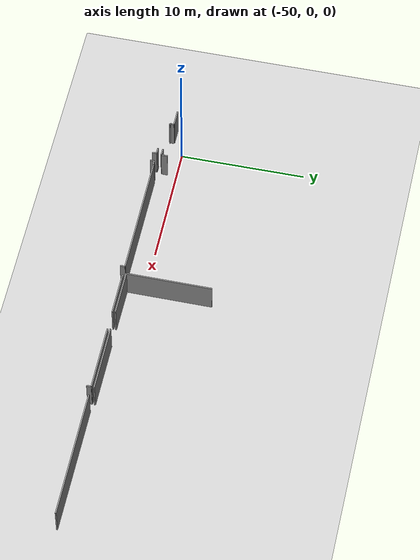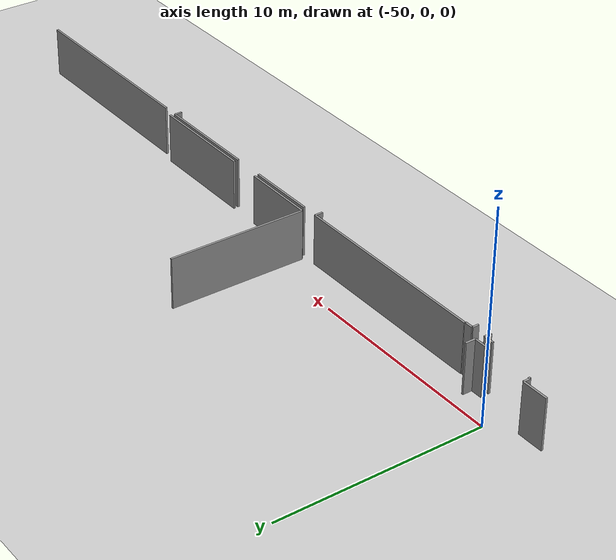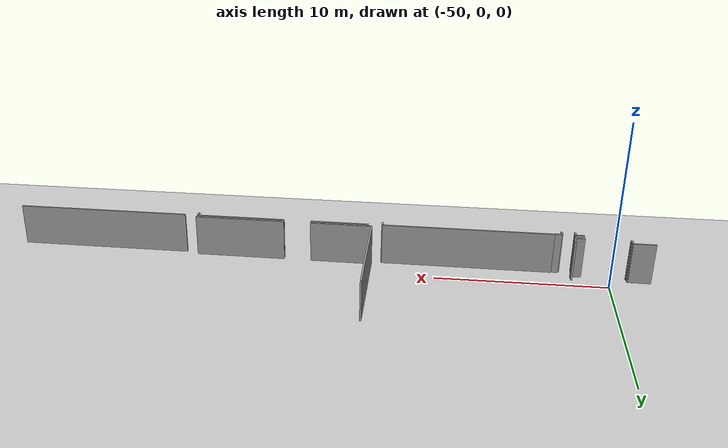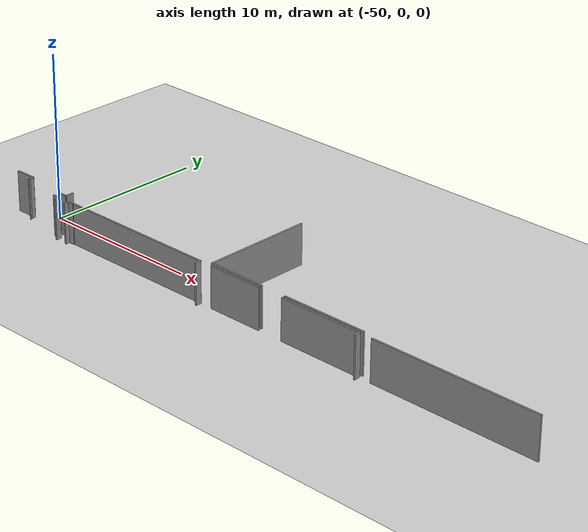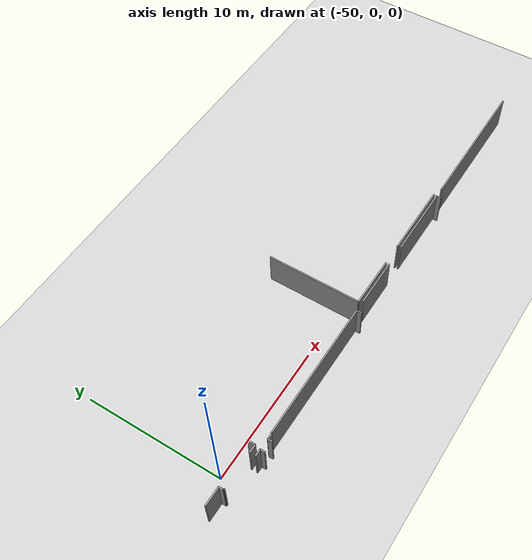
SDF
<sdf version="1.6">
 <world name="default">
  <model name="ground_plane">
   <static>1</static>
   <link name="link">
    <collision name="collision">
     <geometry><plane><normal>0 0 1</normal><size>100 100</size></plane></geometry>
     <surface><friction><ode><mu>100</mu><mu2>50</mu2></ode></friction></surface>
    </collision>
    <visual name="visual">
     <cast_shadows>0</cast_shadows>
     <geometry><plane><normal>0 0 1</normal><size>100 100</size></plane></geometry>
     <material>
      <script><uri>file://media/materials/scripts/gazebo.material</uri><name>Gazebo/Grey</name></script>
     </material>
    </visual>
   </link>
  </model>
  <model name="50015847">
   <static>1</static>
   <link name="Wall_294">
    <collision name="Wall_294_Collision">
     <geometry><box><size>0.502618599685 0.1 2.5</size></box></geometry>
     <pose>0.251309299842 0 1.25 0 0 0</pose>
    </collision>
    <visual name="Wall_294_Visual">
     <pose>0.251309299842 0 1.25 0 0 0</pose>
     <geometry><box><size>0.502618599685 0.1 2.5</size></box></geometry>
     <material>
      <script><uri>file://media/materials/scripts/gazebo.material</uri><name>Gazebo/Grey</name></script>
      <ambient>1 1 1 1</ambient>
     </material>
    </visual>
    <pose>84.4122133523 -44.6494127218 0 0 0 -1.57079632679</pose>
   </link>
   <link name="Wall_295">
    <collision name="Wall_295_Collision">
     <geometry><box><size>0.590583210454 0.1 2.5</size></box></geometry>
     <pose>0.295291605227 0 1.25 0 0 0</pose>
    </collision>
    <visual name="Wall_295_Visual">
     <pose>0.295291605227 0 1.25 0 0 0</pose>
     <geometry><box><size>0.590583210454 0.1 2.5</size></box></geometry>
     <material>
      <script><uri>file://media/materials/scripts/gazebo.material</uri><name>Gazebo/Grey</name></script>
      <ambient>1 1 1 1</ambient>
     </material>
    </visual>
    <pose>84.4122133523 -45.1520313215 0 0 0 3.14159265359</pose>
   </link>
   <link name="Wall_296">
    <collision name="Wall_296_Collision">
     <geometry><box><size>0.0950831341842 0.1 2.5</size></box></geometry>
     <pose>0.0475415670921 0 1.25 0 0 0</pose>
    </collision>
    <visual name="Wall_296_Visual">
     <pose>0.0475415670921 0 1.25 0 0 0</pose>
     <geometry><box><size>0.0950831341842 0.1 2.5</size></box></geometry>
     <material>
      <script><uri>file://media/materials/scripts/gazebo.material</uri><name>Gazebo/Grey</name></script>
      <ambient>1 1 1 1</ambient>
     </material>
    </visual>
    <pose>81.2879442721 -45.1520313215 0 0 0 3.14159265359</pose>
   </link>
   <link name="Wall_297">
    <collision name="Wall_297_Collision">
     <geometry><box><size>0.328977474958 0.1 2.5</size></box></geometry>
     <pose>0.164488737479 0 1.25 0 0 0</pose>
    </collision>
    <visual name="Wall_297_Visual">
     <pose>0.164488737479 0 1.25 0 0 0</pose>
     <geometry><box><size>0.328977474958 0.1 2.5</size></box></geometry>
     <material>
      <script><uri>file://media/materials/scripts/gazebo.material</uri><name>Gazebo/Grey</name></script>
      <ambient>1 1 1 1</ambient>
     </material>
    </visual>
    <pose>81.1928611379 -45.1520313215 0 0 0 1.57079632679</pose>
   </link>
   <link name="Wall_298">
    <collision name="Wall_298_Collision">
     <geometry><box><size>1.30980830833 0.1 2.5</size></box></geometry>
     <pose>0.654904154167 0 1.25 0 0 0</pose>
    </collision>
    <visual name="Wall_298_Visual">
     <pose>0.654904154167 0 1.25 0 0 0</pose>
     <geometry><box><size>1.30980830833 0.1 2.5</size></box></geometry>
     <material>
      <script><uri>file://media/materials/scripts/gazebo.material</uri><name>Gazebo/Grey</name></script>
      <ambient>1 1 1 1</ambient>
     </material>
    </visual>
    <pose>81.1928611379 -44.8230538465 0 0 0 3.14159265359</pose>
   </link>
   <link name="Wall_319">
    <collision name="Wall_319_Collision">
     <geometry><box><size>6.78090201861 0.1 2.5</size></box></geometry>
     <pose>3.3904510093 0 1.25 0 0 0</pose>
    </collision>
    <visual name="Wall_319_Visual">
     <pose>3.3904510093 0 1.25 0 0 0</pose>
     <geometry><box><size>6.78090201861 0.1 2.5</size></box></geometry>
     <material>
      <script><uri>file://media/materials/scripts/gazebo.material</uri><name>Gazebo/Grey</name></script>
      <ambient>1 1 1 1</ambient>
     </material>
    </visual>
    <pose>96.1956577007 -45.2949102558 0 0 0 1.57079632679</pose>
   </link>
   <link name="Wall_322">
    <collision name="Wall_322_Collision">
     <geometry><box><size>5.39634921442 0.1 2.5</size></box></geometry>
     <pose>2.69817460721 0 1.25 0 0 0</pose>
    </collision>
    <visual name="Wall_322_Visual">
     <pose>2.69817460721 0 1.25 0 0 0</pose>
     <geometry><box><size>5.39634921442 0.1 2.5</size></box></geometry>
     <material>
      <script><uri>file://media/materials/scripts/gazebo.material</uri><name>Gazebo/Grey</name></script>
      <ambient>1 1 1 1</ambient>
     </material>
    </visual>
    <pose>106.848782224 -45.3127065643 0 0 0 3.14159265359</pose>
   </link>
   <link name="Wall_323">
    <collision name="Wall_323_Collision">
     <geometry><box><size>3.658455854 0.1 2.5</size></box></geometry>
     <pose>1.829227927 0 1.25 0 0 0</pose>
    </collision>
    <visual name="Wall_323_Visual">
     <pose>1.829227927 0 1.25 0 0 0</pose>
     <geometry><box><size>3.658455854 0.1 2.5</size></box></geometry>
     <material>
      <script><uri>file://media/materials/scripts/gazebo.material</uri><name>Gazebo/Grey</name></script>
      <ambient>1 1 1 1</ambient>
     </material>
    </visual>
    <pose>99.85407027 -45.3127065643 0 0 0 3.13672820273</pose>
   </link>
   <link name="Wall_1107">
    <collision name="Wall_1107_Collision">
     <geometry><box><size>0.498550872019 0.1 2.5</size></box></geometry>
     <pose>0.24927543601 0 1.25 0 0 0</pose>
    </collision>
    <visual name="Wall_1107_Visual">
     <pose>0.24927543601 0 1.25 0 0 0</pose>
     <geometry><box><size>0.498550872019 0.1 2.5</size></box></geometry>
     <material>
      <script><uri>file://media/materials/scripts/gazebo.material</uri><name>Gazebo/Grey</name></script>
      <ambient>1 1 1 1</ambient>
     </material>
    </visual>
    <pose>83.8279859663 -45.5572786902 0 0 0 0.0</pose>
   </link>
   <link name="Wall_1108">
    <collision name="Wall_1108_Collision">
     <geometry><box><size>0.341943356892 0.1 2.5</size></box></geometry>
     <pose>0.170971678446 0 1.25 0 0 0</pose>
    </collision>
    <visual name="Wall_1108_Visual">
     <pose>0.170971678446 0 1.25 0 0 0</pose>
     <geometry><box><size>0.341943356892 0.1 2.5</size></box></geometry>
     <material>
      <script><uri>file://media/materials/scripts/gazebo.material</uri><name>Gazebo/Grey</name></script>
      <ambient>1 1 1 1</ambient>
     </material>
    </visual>
    <pose>84.3265368384 -45.5572786902 0 0 0 -1.57079632679</pose>
   </link>
   <link name="Wall_1110">
    <collision name="Wall_1110_Collision">
     <geometry><box><size>0.324147048355 0.1 2.5</size></box></geometry>
     <pose>0.162073524178 0 1.25 0 0 0</pose>
    </collision>
    <visual name="Wall_1110_Visual">
     <pose>0.162073524178 0 1.25 0 0 0</pose>
     <geometry><box><size>0.324147048355 0.1 2.5</size></box></geometry>
     <material>
      <script><uri>file://media/materials/scripts/gazebo.material</uri><name>Gazebo/Grey</name></script>
      <ambient>1 1 1 1</ambient>
     </material>
    </visual>
    <pose>85.0996593278 -45.8992220471 0 0 0 1.57079632679</pose>
   </link>
   <link name="Wall_1111">
    <collision name="Wall_1111_Collision">
     <geometry><box><size>0.415416687853 0.1 2.5</size></box></geometry>
     <pose>0.207708343926 0 1.25 0 0 0</pose>
    </collision>
    <visual name="Wall_1111_Visual">
     <pose>0.207708343926 0 1.25 0 0 0</pose>
     <geometry><box><size>0.415416687853 0.1 2.5</size></box></geometry>
     <material>
      <script><uri>file://media/materials/scripts/gazebo.material</uri><name>Gazebo/Grey</name></script>
      <ambient>1 1 1 1</ambient>
     </material>
    </visual>
    <pose>85.0996593278 -45.5750749987 0 0 0 0.0</pose>
   </link>
   <link name="Wall_1112">
    <collision name="Wall_1112_Collision">
     <geometry><box><size>0.0371180149489 0.1 2.5</size></box></geometry>
     <pose>0.0185590074745 0 1.25 0 0 0</pose>
    </collision>
    <visual name="Wall_1112_Visual">
     <pose>0.0185590074745 0 1.25 0 0 0</pose>
     <geometry><box><size>0.0371180149489 0.1 2.5</size></box></geometry>
     <material>
      <script><uri>file://media/materials/scripts/gazebo.material</uri><name>Gazebo/Grey</name></script>
      <ambient>1 1 1 1</ambient>
     </material>
    </visual>
    <pose>85.5150760157 -45.5750749987 0 0 0 1.57079632679</pose>
   </link>
   <link name="Wall_1113">
    <collision name="Wall_1113_Collision">
     <geometry><box><size>10.0541516245 0.1 2.5</size></box></geometry>
     <pose>5.02707581227 0 1.25 0 0 0</pose>
    </collision>
    <visual name="Wall_1113_Visual">
     <pose>5.02707581227 0 1.25 0 0 0</pose>
     <geometry><box><size>10.0541516245 0.1 2.5</size></box></geometry>
     <material>
      <script><uri>file://media/materials/scripts/gazebo.material</uri><name>Gazebo/Grey</name></script>
      <ambient>1 1 1 1</ambient>
     </material>
    </visual>
    <pose>85.5150760157 -45.5379569838 0 0 0 0.0</pose>
   </link>
   <link name="Wall_1114">
    <collision name="Wall_1114_Collision">
     <geometry><box><size>0.382366400569 0.1 2.5</size></box></geometry>
     <pose>0.191183200285 0 1.25 0 0 0</pose>
    </collision>
    <visual name="Wall_1114_Visual">
     <pose>0.191183200285 0 1.25 0 0 0</pose>
     <geometry><box><size>0.382366400569 0.1 2.5</size></box></geometry>
     <material>
      <script><uri>file://media/materials/scripts/gazebo.material</uri><name>Gazebo/Grey</name></script>
      <ambient>1 1 1 1</ambient>
     </material>
    </visual>
    <pose>95.5692276402 -45.5379569838 0 0 0 -1.57079632679</pose>
   </link>
   <link name="Wall_1117">
    <collision name="Wall_1117_Collision">
     <geometry><box><size>3.49468653074 0.1 2.5</size></box></geometry>
     <pose>1.74734326537 0 1.25 0 0 0</pose>
    </collision>
    <visual name="Wall_1117_Visual">
     <pose>1.74734326537 0 1.25 0 0 0</pose>
     <geometry><box><size>3.49468653074 0.1 2.5</size></box></geometry>
     <material>
      <script><uri>file://media/materials/scripts/gazebo.material</uri><name>Gazebo/Grey</name></script>
      <ambient>1 1 1 1</ambient>
     </material>
    </visual>
    <pose>96.3817562414 -45.5379569838 0 0 0 0.0</pose>
   </link>
   <link name="Wall_1118">
    <collision name="Wall_1118_Collision">
     <geometry><box><size>5.31168963238 0.1 2.5</size></box></geometry>
     <pose>2.65584481619 0 1.25 0 0 0</pose>
    </collision>
    <visual name="Wall_1118_Visual">
     <pose>2.65584481619 0 1.25 0 0 0</pose>
     <geometry><box><size>5.31168963238 0.1 2.5</size></box></geometry>
     <material>
      <script><uri>file://media/materials/scripts/gazebo.material</uri><name>Gazebo/Grey</name></script>
      <ambient>1 1 1 1</ambient>
     </material>
    </visual>
    <pose>101.472771648 -45.5379569838 0 0 0 0.0</pose>
   </link>
   <link name="Wall_1119">
    <collision name="Wall_1119_Collision">
     <geometry><box><size>0.367366654802 0.1 2.5</size></box></geometry>
     <pose>0.183683327401 0 1.25 0 0 0</pose>
    </collision>
    <visual name="Wall_1119_Visual">
     <pose>0.183683327401 0 1.25 0 0 0</pose>
     <geometry><box><size>0.367366654802 0.1 2.5</size></box></geometry>
     <material>
      <script><uri>file://media/materials/scripts/gazebo.material</uri><name>Gazebo/Grey</name></script>
      <ambient>1 1 1 1</ambient>
     </material>
    </visual>
    <pose>106.78446128 -45.5379569838 0 0 0 -1.57079632679</pose>
   </link>
   <link name="Wall_1122">
    <collision name="Wall_1122_Collision">
     <geometry><box><size>10.3602481314 0.1 2.5</size></box></geometry>
     <pose>5.18012406569 0 1.25 0 0 0</pose>
    </collision>
    <visual name="Wall_1122_Visual">
     <pose>5.18012406569 0 1.25 0 0 0</pose>
     <geometry><box><size>10.3602481314 0.1 2.5</size></box></geometry>
     <material>
      <script><uri>file://media/materials/scripts/gazebo.material</uri><name>Gazebo/Grey</name></script>
      <ambient>1 1 1 1</ambient>
     </material>
    </visual>
    <pose>107.550719479 -45.5440585753 0 0 0 0.0</pose>
   </link>
   <pose>-132.35 43.9162226064 0 0 0 0</pose>
  </model>
 </world>
</sdf>
